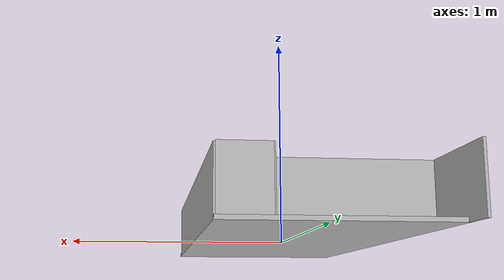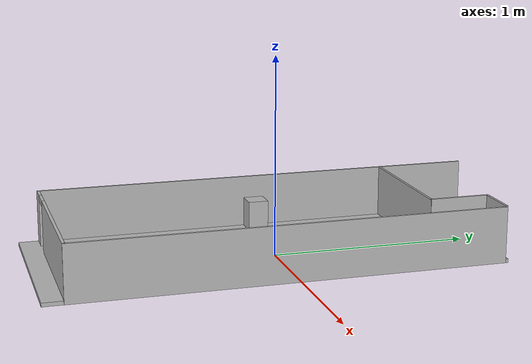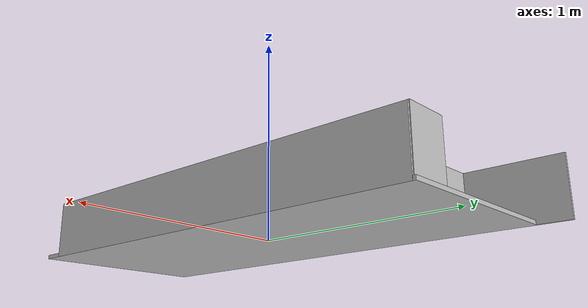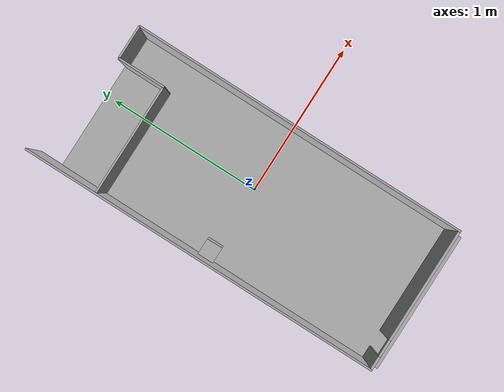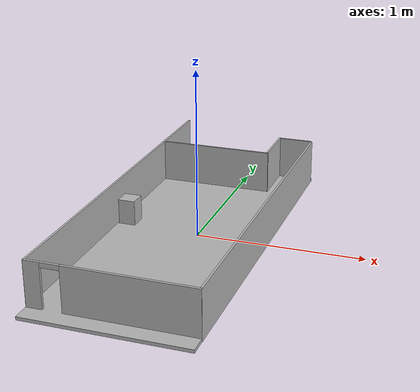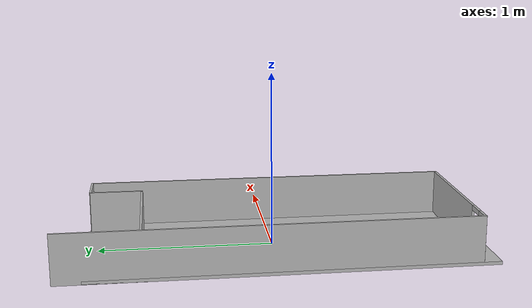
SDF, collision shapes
<?xml version="1.0" ?>
<sdf version="1.5">
  <model name="cafe">
    <static>true</static>
    <link name="link">
      <collision name="main_floor">
        <pose>-0.04 -0.075 0.00948 0 0 0</pose>
        <geometry>
          <box>
            <size>0.938 2.263 0.019</size>
          </box>
        </geometry>
      </collision>

      <collision name="wall_1">
        <pose>-0.503 0.053 0.1415 0 0 0</pose>
        <geometry>
          <box>
            <size>.012 2.316 0.283</size>
          </box>
        </geometry>
      </collision>

      <collision name="wall_2">
        <pose>.424 -.031 0.1415 0 0 0</pose>
        <geometry>
          <box>
            <size>.012 2.148 0.283</size>
          </box>
        </geometry>
      </collision>

      <collision name="wall_3">
        <pose>-.148 .743 .1415 0 0 0</pose>
        <geometry>
          <box>
            <size>0.72 0.012 .283</size>
          </box>
        </geometry>
      </collision>

      <collision name="wall_4">
        <pose>0.209 0.89 0.1435 0 0 0</pose>
        <geometry>
          <box>
            <size>0.012 0.305 0.287</size>
          </box>
        </geometry>
      </collision>

      <collision name="wall_5">
        <pose>0.3155 1.04 0.1435 0 0 0</pose>
        <geometry>
          <box>
            <size>0.213 0.012 0.287</size>
          </box>
        </geometry>
      </collision>

      <collision name="wall_6">
        <pose>0.0615 -1.098 0.1415 0 0 0</pose>
        <geometry>
          <box>
            <size>0.736 0.015 0.283</size>
          </box>
        </geometry>
      </collision>

      <collision name="wall_7">
        <pose>-0.462 -1.098 0.1415 0 0 0</pose>
        <geometry>
          <box>
            <size>0.093 0.015 0.283</size>
          </box>
        </geometry>
      </collision>

      <collision name="wall_8">
        <pose>-0.361 -1.098 0.269 0 0 0</pose>
        <geometry>
          <box>
            <size>0.109 0.015 0.028</size>
          </box>
        </geometry>
      </collision>

      <collision name="coke">
        <pose>-0.4385 0.026 0.095 0 0 0</pose>
        <geometry>
          <box>
            <size>0.103 0.103 0.152</size>
          </box>
        </geometry>
      </collision>

      <visual name="visual">
        <geometry>
          <mesh>
            <uri>model://cafe/meshes/cafe.dae</uri>
            <scale>0.1 0.1 0.1</scale>
          </mesh>
        </geometry>
      </visual>
    </link>
  </model>
</sdf>
